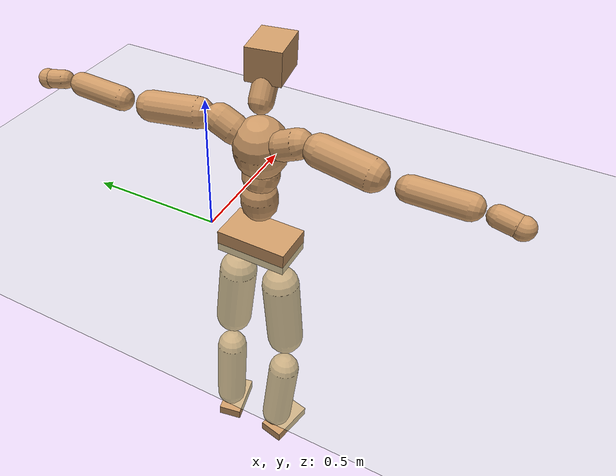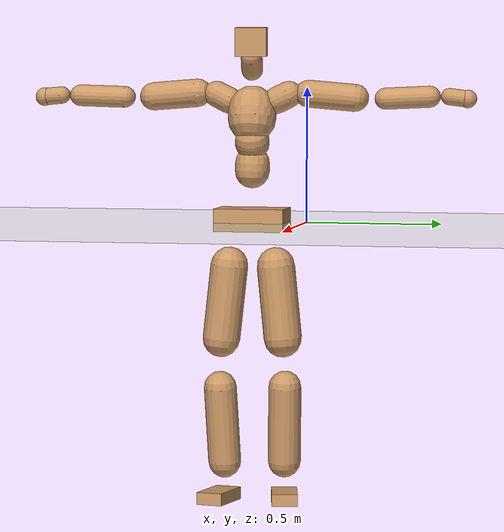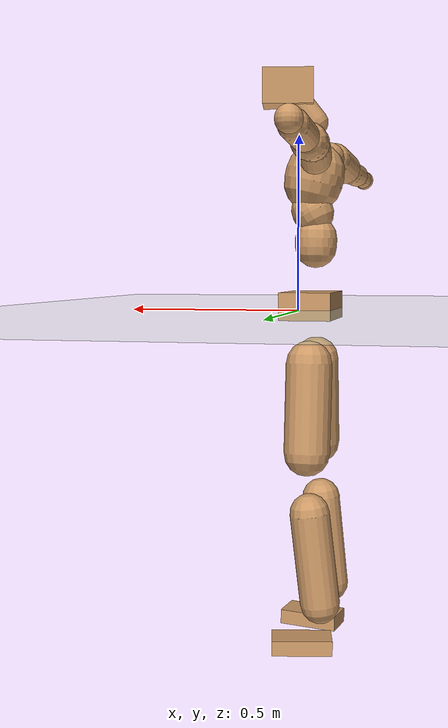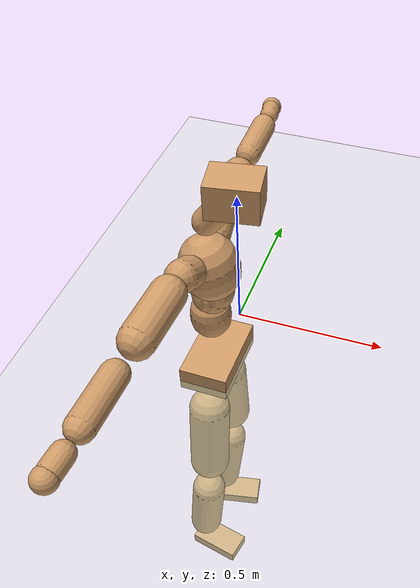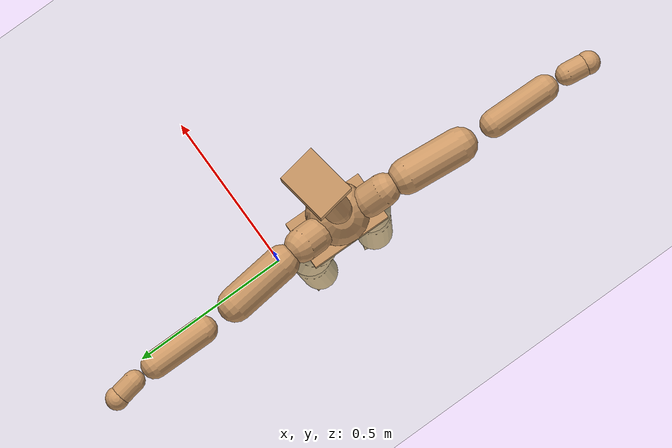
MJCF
<mujoco model="humanoid">
  <compiler coordinate="local" angle="radian"/>
  <default>
    <joint damping="0.0" armature="0.01" stiffness="0.0" limited="true"/>
    <geom conaffinity="1" condim="3" contype="7" margin="0.001" rgba="0.8 0.6 .4 1"/>
  </default>
  <asset>
    <texture type="skybox" builtin="gradient" rgb1=".4 .5 .6" rgb2="0 0 0" width="100" height="100"/>
    <texture builtin="flat" height="1278" mark="cross" markrgb="1 1 1" name="texgeom" random="0.01" rgb1="0.8 0.6 0.4" rgb2="0.8 0.6 0.4" type="cube" width="127"/>
    <texture builtin="checker" height="100" name="texplane" rgb1="0 0 0" rgb2="0.8 0.8 0.8" type="2d" width="100"/>
    <material name="MatPlane" reflectance="0.5" shininess="1" specular="1" texrepeat="60 60" texture="texplane"/>
    <material name="geom" texture="texgeom" texuniform="true"/>
  </asset>
  <worldbody>
    <light cutoff="100" diffuse="1 1 1" dir="-0 0 -1.3" directional="true" exponent="1" pos="0 0 1.3" specular=".1 .1 .1"/>
    <geom conaffinity="1" condim="3" name="floor" pos="0 0 0" rgba="0.8 0.9 0.8 1" size="100 100 .2" type="plane" material="MatPlane"/>
    <body name="Pelvis" pos="0.002 -0.2089 0.0216">
      <freejoint name="Pelvis"/>
      <geom type="box" contype="1" conaffinity="1" density="500" pos="-0.0077 0.0001 -0.0135" size="0.0783 0.131 0.0419" quat="1.0000 0.0000 0.0000 -0.0074" name="Pelvis"/>
      <body name="L_Hip" pos="-0.0157 0.0801 -0.0974">
        <joint name="L_Hip_x" type="hinge" pos="0 0 0" axis="1 0 0" stiffness="800" damping="80" armature="0.02" range="-180.0000 180.0000"/>
        <joint name="L_Hip_y" type="hinge" pos="0 0 0" axis="0 1 0" stiffness="800" damping="80" armature="0.02" range="-180.0000 180.0000"/>
        <joint name="L_Hip_z" type="hinge" pos="0 0 0" axis="0 0 1" stiffness="800" damping="80" armature="0.02" range="-180.0000 180.0000"/>
        <geom type="capsule" contype="1" conaffinity="1" density="500" fromto="0.0003 0.0088 -0.0898 0.0013 0.0354 -0.3594" size="0.0705" name="L_Hip"/>
        <body name="L_Knee" pos="0.0016 0.0442 -0.4492">
          <joint name="L_Knee_x" type="hinge" pos="0 0 0" axis="1 0 0" stiffness="800" damping="80" armature="0.02" range="-180.0000 180.0000"/>
          <joint name="L_Knee_y" type="hinge" pos="0 0 0" axis="0 1 0" stiffness="800" damping="80" armature="0.02" range="-180.0000 180.0000"/>
          <joint name="L_Knee_z" type="hinge" pos="0 0 0" axis="0 0 1" stiffness="800" damping="80" armature="0.02" range="-180.0000 180.0000"/>
          <geom type="capsule" contype="1" conaffinity="1" density="500" fromto="-0.0107 -0.0027 -0.0943 -0.0429 -0.0107 -0.3772" size="0.0608" name="L_Knee"/>
          <body name="L_Ankle" pos="-0.0536 -0.0134 -0.4715">
            <joint name="L_Ankle_x" type="hinge" pos="0 0 0" axis="1 0 0" stiffness="800" damping="80" armature="0.02" range="-180.0000 180.0000"/>
            <joint name="L_Ankle_y" type="hinge" pos="0 0 0" axis="0 1 0" stiffness="800" damping="80" armature="0.02" range="-180.0000 180.0000"/>
            <joint name="L_Ankle_z" type="hinge" pos="0 0 0" axis="0 0 1" stiffness="800" damping="80" armature="0.02" range="-180.0000 180.0000"/>
            <geom type="box" contype="1" conaffinity="1" density="500" pos="0.0654 0.0128 -0.0322" size="0.0922 0.0479 0.0233" quat="0.9953 0.0000 0.0000 0.0967" name="L_Ankle"/>
            <body name="L_Toe" pos="0.1307 0.0256 -0.0645">
              <joint name="L_Toe_x" type="hinge" pos="0 0 0" axis="1 0 0" stiffness="500" damping="50" armature="0.02" range="-180.0000 180.0000"/>
              <joint name="L_Toe_y" type="hinge" pos="0 0 0" axis="0 1 0" stiffness="500" damping="50" armature="0.02" range="-180.0000 180.0000"/>
              <joint name="L_Toe_z" type="hinge" pos="0 0 0" axis="0 0 1" stiffness="500" damping="50" armature="0.02" range="-180.0000 180.0000"/>
              <geom type="box" contype="1" conaffinity="1" density="500" pos="0.0000 0.0000 0.0329" size="0.0009 0.0024 0.0012" quat="0.9947 0.0000 0.0000 0.1025" name="L_Toe"/>
            </body>
          </body>
        </body>
      </body>
      <body name="R_Hip" pos="-0.0114 -0.0768 -0.0948">
        <joint name="R_Hip_x" type="hinge" pos="0 0 0" axis="1 0 0" stiffness="800" damping="80" armature="0.02" range="-180.0000 180.0000"/>
        <joint name="R_Hip_y" type="hinge" pos="0 0 0" axis="0 1 0" stiffness="800" damping="80" armature="0.02" range="-180.0000 180.0000"/>
        <joint name="R_Hip_z" type="hinge" pos="0 0 0" axis="0 0 1" stiffness="800" damping="80" armature="0.02" range="-180.0000 180.0000"/>
        <geom type="capsule" contype="1" conaffinity="1" density="500" fromto="-0.0005 -0.0102 -0.0917 -0.0021 -0.0409 -0.3666" size="0.0694" name="R_Hip"/>
        <body name="R_Knee" pos="-0.0026 -0.0511 -0.4583">
          <joint name="R_Knee_x" type="hinge" pos="0 0 0" axis="1 0 0" stiffness="800" damping="80" armature="0.02" range="-180.0000 180.0000"/>
          <joint name="R_Knee_y" type="hinge" pos="0 0 0" axis="0 1 0" stiffness="800" damping="80" armature="0.02" range="-180.0000 180.0000"/>
          <joint name="R_Knee_z" type="hinge" pos="0 0 0" axis="0 0 1" stiffness="800" damping="80" armature="0.02" range="-180.0000 180.0000"/>
          <geom type="capsule" contype="1" conaffinity="1" density="500" fromto="-0.0103 0.0034 -0.0944 -0.0412 0.0137 -0.3777" size="0.061" name="R_Knee"/>
          <body name="R_Ankle" pos="-0.0515 0.0172 -0.4721">
            <joint name="R_Ankle_x" type="hinge" pos="0 0 0" axis="1 0 0" stiffness="800" damping="80" armature="0.02" range="-180.0000 180.0000"/>
            <joint name="R_Ankle_y" type="hinge" pos="0 0 0" axis="0 1 0" stiffness="800" damping="80" armature="0.02" range="-180.0000 180.0000"/>
            <joint name="R_Ankle_z" type="hinge" pos="0 0 0" axis="0 0 1" stiffness="800" damping="80" armature="0.02" range="-180.0000 180.0000"/>
            <geom type="box" contype="1" conaffinity="1" density="500" pos="0.0672 -0.0141 -0.0281" size="0.0937 0.0493 0.023" quat="0.9947 0.0000 0.0000 -0.1030" name="R_Ankle"/>
            <body name="R_Toe" pos="0.1345 -0.0282 -0.0562">
              <joint name="R_Toe_x" type="hinge" pos="0 0 0" axis="1 0 0" stiffness="500" damping="50" armature="0.02" range="-180.0000 180.0000"/>
              <joint name="R_Toe_y" type="hinge" pos="0 0 0" axis="0 1 0" stiffness="500" damping="50" armature="0.02" range="-180.0000 180.0000"/>
              <joint name="R_Toe_z" type="hinge" pos="0 0 0" axis="0 0 1" stiffness="500" damping="50" armature="0.02" range="-180.0000 180.0000"/>
              <geom type="box" contype="1" conaffinity="1" density="500" pos="0.0000 0.0000 0.0305" size="0.0008 0.0024 0.0013" quat="0.9955 0.0000 0.0000 -0.0946" name="R_Toe"/>
            </body>
          </body>
        </body>
      </body>
      <body name="Torso" pos="-0.019 -0.0027 0.1111">
        <joint name="Torso_x" type="hinge" pos="0 0 0" axis="1 0 0" stiffness="1000" damping="100" armature="0.02" range="-180.0000 180.0000"/>
        <joint name="Torso_y" type="hinge" pos="0 0 0" axis="0 1 0" stiffness="1000" damping="100" armature="0.02" range="-180.0000 180.0000"/>
        <joint name="Torso_z" type="hinge" pos="0 0 0" axis="0 0 1" stiffness="1000" damping="100" armature="0.02" range="-180.0000 180.0000"/>
        <geom type="capsule" contype="1" conaffinity="1" density="500" fromto="-0.0023 0.0019 0.0828 -0.0015 0.0012 0.0552" size="0.0641" name="Torso"/>
        <body name="Spine" pos="-0.0038 0.0031 0.1381">
          <joint name="Spine_x" type="hinge" pos="0 0 0" axis="1 0 0" stiffness="1000" damping="100" armature="0.02" range="-180.0000 180.0000"/>
          <joint name="Spine_y" type="hinge" pos="0 0 0" axis="0 1 0" stiffness="1000" damping="100" armature="0.02" range="-180.0000 180.0000"/>
          <joint name="Spine_z" type="hinge" pos="0 0 0" axis="0 0 1" stiffness="1000" damping="100" armature="0.02" range="-180.0000 180.0000"/>
          <geom type="capsule" contype="1" conaffinity="1" density="500" fromto="0.0156 0.0000 0.0308 0.0104 0.0000 0.0206" size="0.0638" name="Spine"/>
          <body name="Chest" pos="0.0261 0 0.0514">
            <joint name="Chest_x" type="hinge" pos="0 0 0" axis="1 0 0" stiffness="1000" damping="100" armature="0.02" range="-180.0000 180.0000"/>
            <joint name="Chest_y" type="hinge" pos="0 0 0" axis="0 1 0" stiffness="1000" damping="100" armature="0.02" range="-180.0000 180.0000"/>
            <joint name="Chest_z" type="hinge" pos="0 0 0" axis="0 0 1" stiffness="1000" damping="100" armature="0.02" range="-180.0000 180.0000"/>
            <geom type="capsule" contype="1" conaffinity="1" density="500" fromto="-0.0211 -0.0011 0.0923 -0.0141 -0.0008 0.0616" size="0.0901" name="Chest"/>
            <body name="Neck" pos="-0.0324 -0.0032 0.2253">
              <joint name="Neck_x" type="hinge" pos="0 0 0" axis="1 0 0" stiffness="500" damping="50" armature="0.02" range="-180.0000 180.0000"/>
              <joint name="Neck_y" type="hinge" pos="0 0 0" axis="0 1 0" stiffness="500" damping="50" armature="0.02" range="-180.0000 180.0000"/>
              <joint name="Neck_z" type="hinge" pos="0 0 0" axis="0 0 1" stiffness="500" damping="50" armature="0.02" range="-180.0000 180.0000"/>
              <geom type="capsule" contype="1" conaffinity="1" density="500" fromto="0.0125 0.0017 0.0157 0.0499 0.0067 0.0630" size="0.0399" name="Neck"/>
              <body name="Head" pos="0.0624 0.0084 0.0787">
                <joint name="Head_x" type="hinge" pos="0 0 0" axis="1 0 0" stiffness="500" damping="50" armature="0.02" range="-180.0000 180.0000"/>
                <joint name="Head_y" type="hinge" pos="0 0 0" axis="0 1 0" stiffness="500" damping="50" armature="0.02" range="-180.0000 180.0000"/>
                <joint name="Head_z" type="hinge" pos="0 0 0" axis="0 0 1" stiffness="500" damping="50" armature="0.02" range="-180.0000 180.0000"/>
                <geom type="box" contype="1" conaffinity="1" density="500" pos="0.0322 0.0052 0.0404" size="0.0765 0.0579 0.053" quat="0.9968 0.0000 0.0000 0.0801" name="Head"/>
              </body>
            </body>
            <body name="L_Thorax" pos="-0.033 0.0704 0.119">
              <joint name="L_Thorax_x" type="hinge" pos="0 0 0" axis="1 0 0" stiffness="500" damping="50" armature="0.02" range="-180.0000 180.0000"/>
              <joint name="L_Thorax_y" type="hinge" pos="0 0 0" axis="0 1 0" stiffness="500" damping="50" armature="0.02" range="-180.0000 180.0000"/>
              <joint name="L_Thorax_z" type="hinge" pos="0 0 0" axis="0 0 1" stiffness="500" damping="50" armature="0.02" range="-180.0000 180.0000"/>
              <geom type="capsule" contype="1" conaffinity="1" density="500" fromto="-0.0007 0.0159 0.0078 -0.0028 0.0637 0.0312" size="0.0495" name="L_Thorax"/>
              <body name="L_Shoulder" pos="-0.0034 0.0797 0.039">
                <joint name="L_Shoulder_x" type="hinge" pos="0 0 0" axis="1 0 0" stiffness="500" damping="50" armature="0.02" range="-720.0000 720.0000"/>
                <joint name="L_Shoulder_y" type="hinge" pos="0 0 0" axis="0 1 0" stiffness="500" damping="50" armature="0.02" range="-720.0000 720.0000"/>
                <joint name="L_Shoulder_z" type="hinge" pos="0 0 0" axis="0 0 1" stiffness="500" damping="50" armature="0.02" range="-720.0000 720.0000"/>
                <geom type="capsule" contype="1" conaffinity="1" density="500" fromto="-0.0059 0.0572 -0.0050 -0.0238 0.2286 -0.0202" size="0.0508" name="L_Shoulder"/>
                <body name="L_Elbow" pos="-0.0297 0.2858 -0.0252">
                  <joint name="L_Elbow_x" type="hinge" pos="0 0 0" axis="1 0 0" stiffness="500" damping="50" armature="0.02" range="-720.0000 720.0000"/>
                  <joint name="L_Elbow_y" type="hinge" pos="0 0 0" axis="0 1 0" stiffness="500" damping="50" armature="0.02" range="-720.0000 720.0000"/>
                  <joint name="L_Elbow_z" type="hinge" pos="0 0 0" axis="0 0 1" stiffness="500" damping="50" armature="0.02" range="-720.0000 720.0000"/>
                  <geom type="capsule" contype="1" conaffinity="1" density="500" fromto="-0.0000 0.0551 0.0027 -0.0000 0.2203 0.0108" size="0.0398" name="L_Elbow"/>
                  <body name="L_Wrist" pos="0 0.2754 0.0135">
                    <joint name="L_Wrist_x" type="hinge" pos="0 0 0" axis="1 0 0" stiffness="300" damping="30" armature="0.02" range="-180.0000 180.0000"/>
                    <joint name="L_Wrist_y" type="hinge" pos="0 0 0" axis="0 1 0" stiffness="300" damping="30" armature="0.02" range="-180.0000 180.0000"/>
                    <joint name="L_Wrist_z" type="hinge" pos="0 0 0" axis="0 0 1" stiffness="300" damping="30" armature="0.02" range="-180.0000 180.0000"/>
                    <geom type="capsule" contype="1" conaffinity="1" density="500" fromto="-0.0029 0.0168 -0.0021 -0.0114 0.0670 -0.0086" size="0.0312" name="L_Wrist"/>
                    <body name="L_Hand" pos="-0.0143 0.0838 -0.0107">
                      <joint name="L_Hand_x" type="hinge" pos="0 0 0" axis="1 0 0" stiffness="300" damping="30" armature="0.02" range="-180.0000 180.0000"/>
                      <joint name="L_Hand_y" type="hinge" pos="0 0 0" axis="0 1 0" stiffness="300" damping="30" armature="0.02" range="-180.0000 180.0000"/>
                      <joint name="L_Hand_z" type="hinge" pos="0 0 0" axis="0 0 1" stiffness="300" damping="30" armature="0.02" range="-180.0000 180.0000"/>
                      <geom type="sphere" contype="1" conaffinity="1" density="500" size="0.0336" pos="0.0000 0.0000 0.0000" name="L_Hand"/>
                    </body>
                  </body>
                </body>
              </body>
            </body>
            <body name="R_Thorax" pos="-0.0402 -0.0728 0.1173">
              <joint name="R_Thorax_x" type="hinge" pos="0 0 0" axis="1 0 0" stiffness="500" damping="50" armature="0.02" range="-180.0000 180.0000"/>
              <joint name="R_Thorax_y" type="hinge" pos="0 0 0" axis="0 1 0" stiffness="500" damping="50" armature="0.02" range="-180.0000 180.0000"/>
              <joint name="R_Thorax_z" type="hinge" pos="0 0 0" axis="0 0 1" stiffness="500" damping="50" armature="0.02" range="-180.0000 180.0000"/>
              <geom type="capsule" contype="1" conaffinity="1" density="500" fromto="-0.0009 -0.0169 0.0082 -0.0037 -0.0677 0.0330" size="0.0483" name="R_Thorax"/>
              <body name="R_Shoulder" pos="-0.0046 -0.0847 0.0412">
                <joint name="R_Shoulder_x" type="hinge" pos="0 0 0" axis="1 0 0" stiffness="500" damping="50" armature="0.02" range="-720.0000 720.0000"/>
                <joint name="R_Shoulder_y" type="hinge" pos="0 0 0" axis="0 1 0" stiffness="500" damping="50" armature="0.02" range="-720.0000 720.0000"/>
                <joint name="R_Shoulder_z" type="hinge" pos="0 0 0" axis="0 0 1" stiffness="500" damping="50" armature="0.02" range="-720.0000 720.0000"/>
                <geom type="capsule" contype="1" conaffinity="1" density="500" fromto="-0.0052 -0.0568 -0.0048 -0.0210 -0.2271 -0.0191" size="0.0523" name="R_Shoulder"/>
                <body name="R_Elbow" pos="-0.0262 -0.2838 -0.0239">
                  <joint name="R_Elbow_x" type="hinge" pos="0 0 0" axis="1 0 0" stiffness="500" damping="50" armature="0.02" range="-720.0000 720.0000"/>
                  <joint name="R_Elbow_y" type="hinge" pos="0 0 0" axis="0 1 0" stiffness="500" damping="50" armature="0.02" range="-720.0000 720.0000"/>
                  <joint name="R_Elbow_z" type="hinge" pos="0 0 0" axis="0 0 1" stiffness="500" damping="50" armature="0.02" range="-720.0000 720.0000"/>
                  <geom type="capsule" contype="1" conaffinity="1" density="500" fromto="-0.0012 -0.0572 0.0017 -0.0050 -0.2290 0.0067" size="0.04" name="R_Elbow"/>
                  <body name="R_Wrist" pos="-0.0062 -0.2862 0.0084">
                    <joint name="R_Wrist_x" type="hinge" pos="0 0 0" axis="1 0 0" stiffness="300" damping="30" armature="0.02" range="-180.0000 180.0000"/>
                    <joint name="R_Wrist_y" type="hinge" pos="0 0 0" axis="0 1 0" stiffness="300" damping="30" armature="0.02" range="-180.0000 180.0000"/>
                    <joint name="R_Wrist_z" type="hinge" pos="0 0 0" axis="0 0 1" stiffness="300" damping="30" armature="0.02" range="-180.0000 180.0000"/>
                    <geom type="capsule" contype="1" conaffinity="1" density="500" fromto="-0.0023 -0.0172 -0.0016 -0.0090 -0.0688 -0.0064" size="0.0323" name="R_Wrist"/>
                    <body name="R_Hand" pos="-0.0113 -0.086 -0.008">
                      <joint name="R_Hand_x" type="hinge" pos="0 0 0" axis="1 0 0" stiffness="300" damping="30" armature="0.02" range="-180.0000 180.0000"/>
                      <joint name="R_Hand_y" type="hinge" pos="0 0 0" axis="0 1 0" stiffness="300" damping="30" armature="0.02" range="-180.0000 180.0000"/>
                      <joint name="R_Hand_z" type="hinge" pos="0 0 0" axis="0 0 1" stiffness="300" damping="30" armature="0.02" range="-180.0000 180.0000"/>
                      <geom type="sphere" contype="1" conaffinity="1" density="500" size="0.0343" pos="0.0000 0.0000 0.0000" name="R_Hand"/>
                    </body>
                  </body>
                </body>
              </body>
            </body>
          </body>
        </body>
      </body>
    </body>
  </worldbody>
  <actuator>
    <motor name="L_Hip_x" joint="L_Hip_x" gear="500"/>
    <motor name="L_Hip_y" joint="L_Hip_y" gear="500"/>
    <motor name="L_Hip_z" joint="L_Hip_z" gear="500"/>
    <motor name="L_Knee_x" joint="L_Knee_x" gear="500"/>
    <motor name="L_Knee_y" joint="L_Knee_y" gear="500"/>
    <motor name="L_Knee_z" joint="L_Knee_z" gear="500"/>
    <motor name="L_Ankle_x" joint="L_Ankle_x" gear="500"/>
    <motor name="L_Ankle_y" joint="L_Ankle_y" gear="500"/>
    <motor name="L_Ankle_z" joint="L_Ankle_z" gear="500"/>
    <motor name="L_Toe_x" joint="L_Toe_x" gear="500"/>
    <motor name="L_Toe_y" joint="L_Toe_y" gear="500"/>
    <motor name="L_Toe_z" joint="L_Toe_z" gear="500"/>
    <motor name="R_Hip_x" joint="R_Hip_x" gear="500"/>
    <motor name="R_Hip_y" joint="R_Hip_y" gear="500"/>
    <motor name="R_Hip_z" joint="R_Hip_z" gear="500"/>
    <motor name="R_Knee_x" joint="R_Knee_x" gear="500"/>
    <motor name="R_Knee_y" joint="R_Knee_y" gear="500"/>
    <motor name="R_Knee_z" joint="R_Knee_z" gear="500"/>
    <motor name="R_Ankle_x" joint="R_Ankle_x" gear="500"/>
    <motor name="R_Ankle_y" joint="R_Ankle_y" gear="500"/>
    <motor name="R_Ankle_z" joint="R_Ankle_z" gear="500"/>
    <motor name="R_Toe_x" joint="R_Toe_x" gear="500"/>
    <motor name="R_Toe_y" joint="R_Toe_y" gear="500"/>
    <motor name="R_Toe_z" joint="R_Toe_z" gear="500"/>
    <motor name="Torso_x" joint="Torso_x" gear="500"/>
    <motor name="Torso_y" joint="Torso_y" gear="500"/>
    <motor name="Torso_z" joint="Torso_z" gear="500"/>
    <motor name="Spine_x" joint="Spine_x" gear="500"/>
    <motor name="Spine_y" joint="Spine_y" gear="500"/>
    <motor name="Spine_z" joint="Spine_z" gear="500"/>
    <motor name="Chest_x" joint="Chest_x" gear="500"/>
    <motor name="Chest_y" joint="Chest_y" gear="500"/>
    <motor name="Chest_z" joint="Chest_z" gear="500"/>
    <motor name="Neck_x" joint="Neck_x" gear="500"/>
    <motor name="Neck_y" joint="Neck_y" gear="500"/>
    <motor name="Neck_z" joint="Neck_z" gear="500"/>
    <motor name="Head_x" joint="Head_x" gear="500"/>
    <motor name="Head_y" joint="Head_y" gear="500"/>
    <motor name="Head_z" joint="Head_z" gear="500"/>
    <motor name="L_Thorax_x" joint="L_Thorax_x" gear="500"/>
    <motor name="L_Thorax_y" joint="L_Thorax_y" gear="500"/>
    <motor name="L_Thorax_z" joint="L_Thorax_z" gear="500"/>
    <motor name="L_Shoulder_x" joint="L_Shoulder_x" gear="500"/>
    <motor name="L_Shoulder_y" joint="L_Shoulder_y" gear="500"/>
    <motor name="L_Shoulder_z" joint="L_Shoulder_z" gear="500"/>
    <motor name="L_Elbow_x" joint="L_Elbow_x" gear="500"/>
    <motor name="L_Elbow_y" joint="L_Elbow_y" gear="500"/>
    <motor name="L_Elbow_z" joint="L_Elbow_z" gear="500"/>
    <motor name="L_Wrist_x" joint="L_Wrist_x" gear="500"/>
    <motor name="L_Wrist_y" joint="L_Wrist_y" gear="500"/>
    <motor name="L_Wrist_z" joint="L_Wrist_z" gear="500"/>
    <motor name="L_Hand_x" joint="L_Hand_x" gear="500"/>
    <motor name="L_Hand_y" joint="L_Hand_y" gear="500"/>
    <motor name="L_Hand_z" joint="L_Hand_z" gear="500"/>
    <motor name="R_Thorax_x" joint="R_Thorax_x" gear="500"/>
    <motor name="R_Thorax_y" joint="R_Thorax_y" gear="500"/>
    <motor name="R_Thorax_z" joint="R_Thorax_z" gear="500"/>
    <motor name="R_Shoulder_x" joint="R_Shoulder_x" gear="500"/>
    <motor name="R_Shoulder_y" joint="R_Shoulder_y" gear="500"/>
    <motor name="R_Shoulder_z" joint="R_Shoulder_z" gear="500"/>
    <motor name="R_Elbow_x" joint="R_Elbow_x" gear="500"/>
    <motor name="R_Elbow_y" joint="R_Elbow_y" gear="500"/>
    <motor name="R_Elbow_z" joint="R_Elbow_z" gear="500"/>
    <motor name="R_Wrist_x" joint="R_Wrist_x" gear="500"/>
    <motor name="R_Wrist_y" joint="R_Wrist_y" gear="500"/>
    <motor name="R_Wrist_z" joint="R_Wrist_z" gear="500"/>
    <motor name="R_Hand_x" joint="R_Hand_x" gear="500"/>
    <motor name="R_Hand_y" joint="R_Hand_y" gear="500"/>
    <motor name="R_Hand_z" joint="R_Hand_z" gear="500"/>
  </actuator>
  <contact>
    <exclude body1="Torso" body2="Chest"/>
    <exclude body1="Head" body2="Chest"/>
    <exclude body1="R_Knee" body2="R_Toe"/>
    <exclude body1="R_Knee" body2="L_Ankle"/>
    <exclude body1="R_Knee" body2="L_Toe"/>
    <exclude body1="L_Knee" body2="L_Toe"/>
    <exclude body1="L_Knee" body2="R_Ankle"/>
    <exclude body1="L_Knee" body2="R_Toe"/>
    <exclude body1="L_Shoulder" body2="Chest"/>
    <exclude body1="R_Shoulder" body2="Chest"/>
  </contact>
  <sensor/>
  <size njmax="700" nconmax="700"/>
</mujoco>
